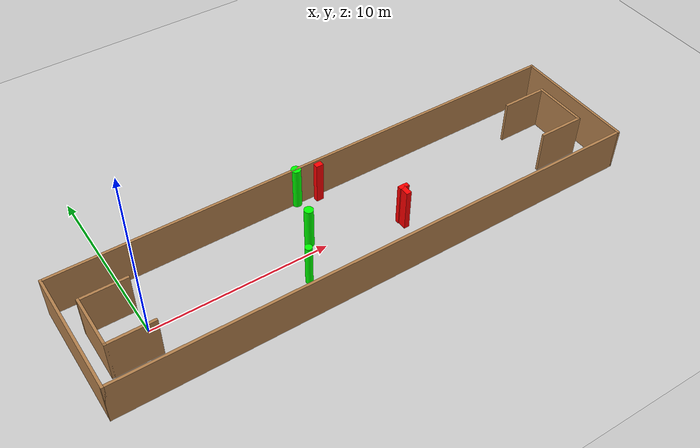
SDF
<sdf version="1.7">
 <world name="default">
  <light name="sun" type="directional">
   <pose>0 0 10 0 -0 0</pose>
   <diffuse>0.8 0.8 0.8 1</diffuse>
   <specular>0.2 0.2 0.2 1</specular>
   <attenuation>
    <range>1000</range>
    <constant>0.9</constant>
    <linear>0.01</linear>
    <quadratic>0.001</quadratic>
   </attenuation>
   <direction>-0.5 0.1 -0.9</direction>
   <spot><inner_angle>0</inner_angle><outer_angle>0</outer_angle><falloff>0</falloff></spot>
  </light>
  <model name="ground_plane">
   <static>1</static>
   <link name="link">
    <collision name="collision">
     <geometry><plane><normal>0 0 1</normal><size>100 100</size></plane></geometry>
     <surface>
      <contact><collide_bitmask>65535</collide_bitmask></contact>
      <friction><ode><mu>100</mu><mu2>50</mu2></ode></friction>
     </surface>
    </collision>
    <visual name="visual">
     <cast_shadows>0</cast_shadows>
     <geometry><plane><normal>0 0 1</normal><size>100 100</size></plane></geometry>
     <material>
      <script><uri>file://media/materials/scripts/gazebo.material</uri><name>Gazebo/Grey</name></script>
     </material>
    </visual>
   </link>
  </model>
  <gravity>0 0 -9.8</gravity>
  <magnetic_field>6e-06 2.3e-05 -4.2e-05</magnetic_field>
  <atmosphere type="adiabatic"/>
  <physics type="ode">
   <max_step_size>0.001</max_step_size>
   <real_time_factor>1</real_time_factor>
   <real_time_update_rate>1000</real_time_update_rate>
  </physics>
  <scene><ambient>0.4 0.4 0.4 1</ambient><background>0.7 0.7 0.7 1</background><shadows>1</shadows></scene>
  <spherical_coordinates>
   <surface_model>EARTH_WGS84</surface_model>
   <latitude_deg>0</latitude_deg>
   <longitude_deg>0</longitude_deg>
   <elevation>0</elevation>
   <heading_deg>0</heading_deg>
  </spherical_coordinates>
  <model name="my_base_walls">
   <link name="Wall_0">
    <collision name="Wall_0_Collision">
     <geometry><box><size>7.15 0.15 2.5</size></box></geometry>
     <pose>0 0 1.25 0 -0 0</pose>
    </collision>
    <visual name="Wall_0_Visual">
     <pose>0 0 1.25 0 -0 0</pose>
     <geometry><box><size>7.15 0.15 2.5</size></box></geometry>
     <material>
      <script><uri>file://media/materials/scripts/gazebo.material</uri><name>Gazebo/Wood</name></script>
      <ambient>1 1 1 1</ambient>
     </material>
     <meta><layer>0</layer></meta>
    </visual>
    <pose>-15 0 0 0 -0 1.5708</pose>
   </link>
   <link name="Wall_10">
    <collision name="Wall_10_Collision">
     <geometry><box><size>2.65 0.15 2.5</size></box></geometry>
     <pose>0 0 1.25 0 -0 0</pose>
    </collision>
    <visual name="Wall_10_Visual">
     <pose>0 0 1.25 0 -0 0</pose>
     <geometry><box><size>2.65 0.15 2.5</size></box></geometry>
     <material>
      <script><uri>file://media/materials/scripts/gazebo.material</uri><name>Gazebo/Wood</name></script>
      <ambient>1 1 1 1</ambient>
     </material>
     <meta><layer>0</layer></meta>
    </visual>
    <pose>-12.75 -1.5 0 0 -0 0</pose>
   </link>
   <link name="Wall_12">
    <collision name="Wall_12_Collision">
     <geometry><box><size>2.65 0.15 2.5</size></box></geometry>
     <pose>0 0 1.25 0 -0 0</pose>
    </collision>
    <visual name="Wall_12_Visual">
     <pose>0 0 1.25 0 -0 0</pose>
     <geometry><box><size>2.65 0.15 2.5</size></box></geometry>
     <material>
      <script><uri>file://media/materials/scripts/gazebo.material</uri><name>Gazebo/Wood</name></script>
      <ambient>1 1 1 1</ambient>
     </material>
     <meta><layer>0</layer></meta>
    </visual>
    <pose>-12.75 1.5 0 0 -0 0</pose>
   </link>
   <link name="Wall_14">
    <collision name="Wall_14_Collision">
     <geometry><box><size>3.15 0.15 2.5</size></box></geometry>
     <pose>0 0 1.25 0 -0 0</pose>
    </collision>
    <visual name="Wall_14_Visual">
     <pose>0 0 1.25 0 -0 0</pose>
     <geometry><box><size>3.15 0.15 2.5</size></box></geometry>
     <material>
      <script><uri>file://media/materials/scripts/gazebo.material</uri><name>Gazebo/Wood</name></script>
      <ambient>1 1 1 1</ambient>
     </material>
     <meta><layer>0</layer></meta>
    </visual>
    <pose>14 0 0 0 -0 -1.5708</pose>
   </link>
   <link name="Wall_15">
    <collision name="Wall_15_Collision">
     <geometry><box><size>2.65 0.15 2.5</size></box></geometry>
     <pose>0 0 1.25 0 -0 0</pose>
    </collision>
    <visual name="Wall_15_Visual">
     <pose>0 0 1.25 0 -0 0</pose>
     <geometry><box><size>2.65 0.15 2.5</size></box></geometry>
     <material>
      <script><uri>file://media/materials/scripts/gazebo.material</uri><name>Gazebo/Wood</name></script>
      <ambient>1 1 1 1</ambient>
     </material>
     <meta><layer>0</layer></meta>
    </visual>
    <pose>12.75 -1.5 0 0 -0 3.14159</pose>
   </link>
   <link name="Wall_17">
    <collision name="Wall_17_Collision">
     <geometry><box><size>2.65 0.15 2.5</size></box></geometry>
     <pose>0 0 1.25 0 -0 0</pose>
    </collision>
    <visual name="Wall_17_Visual">
     <pose>0 0 1.25 0 -0 0</pose>
     <geometry><box><size>2.65 0.15 2.5</size></box></geometry>
     <material>
      <script><uri>file://media/materials/scripts/gazebo.material</uri><name>Gazebo/Wood</name></script>
      <ambient>1 1 1 1</ambient>
     </material>
     <meta><layer>0</layer></meta>
    </visual>
    <pose>12.75 1.5 0 0 -0 3.14159</pose>
   </link>
   <link name="Wall_2">
    <collision name="Wall_2_Collision">
     <geometry><box><size>30.15 0.15 2.5</size></box></geometry>
     <pose>0 0 1.25 0 -0 0</pose>
    </collision>
    <visual name="Wall_2_Visual">
     <pose>0 0 1.25 0 -0 0</pose>
     <geometry><box><size>30.15 0.15 2.5</size></box></geometry>
     <material>
      <script><uri>file://media/materials/scripts/gazebo.material</uri><name>Gazebo/Wood</name></script>
      <ambient>1 1 1 1</ambient>
     </material>
     <meta><layer>0</layer></meta>
    </visual>
    <pose>-0 -3.5 0 0 -0 0</pose>
   </link>
   <link name="Wall_4">
    <collision name="Wall_4_Collision">
     <geometry><box><size>30.15 0.15 2.5</size></box></geometry>
     <pose>0 0 1.25 0 -0 0</pose>
    </collision>
    <visual name="Wall_4_Visual">
     <pose>0 0 1.25 0 -0 0</pose>
     <geometry><box><size>30.15 0.15 2.5</size></box></geometry>
     <material>
      <script><uri>file://media/materials/scripts/gazebo.material</uri><name>Gazebo/Wood</name></script>
      <ambient>1 1 1 1</ambient>
     </material>
     <meta><layer>0</layer></meta>
    </visual>
    <pose>-0 3.5 0 0 -0 0</pose>
   </link>
   <link name="Wall_6">
    <collision name="Wall_6_Collision">
     <geometry><box><size>7.15 0.15 2.5</size></box></geometry>
     <pose>0 0 1.25 0 -0 0</pose>
    </collision>
    <visual name="Wall_6_Visual">
     <pose>0 0 1.25 0 -0 0</pose>
     <geometry><box><size>7.15 0.15 2.5</size></box></geometry>
     <material>
      <script><uri>file://media/materials/scripts/gazebo.material</uri><name>Gazebo/Wood</name></script>
      <ambient>1 1 1 1</ambient>
     </material>
     <meta><layer>0</layer></meta>
    </visual>
    <pose>15 0 0 0 -0 -1.5708</pose>
   </link>
   <link name="Wall_9">
    <collision name="Wall_9_Collision">
     <geometry><box><size>3.15 0.15 2.5</size></box></geometry>
     <pose>0 0 1.25 0 -0 0</pose>
    </collision>
    <visual name="Wall_9_Visual">
     <pose>0 0 1.25 0 -0 0</pose>
     <geometry><box><size>3.15 0.15 2.5</size></box></geometry>
     <material>
      <script><uri>file://media/materials/scripts/gazebo.material</uri><name>Gazebo/Wood</name></script>
      <ambient>1 1 1 1</ambient>
     </material>
     <meta><layer>0</layer></meta>
    </visual>
    <pose>-14 0 0 0 -0 -1.5708</pose>
   </link>
   <static>1</static>
   <pose>11.5 0 0 0 -0 0</pose>
  </model>
  <model name="cylinder1">
   <static>1</static>
   <link name="link">
    <inertial>
     <mass>1</mass>
     <inertia><ixx>0.5</ixx><ixy>0</ixy><ixz>0</ixz><iyy>0.5</iyy><iyz>0</iyz><izz>1</izz></inertia>
    </inertial>
    <collision name="collision">
     <geometry><cylinder><radius>0.2712924031618617</radius><length>2.5</length></cylinder></geometry>
    </collision>
    <visual name="visual">
     <geometry><cylinder><radius>0.2712924031618617</radius><length>2.5</length></cylinder></geometry>
     <material>
      <ambient>0 1 0 1</ambient>
      <diffuse>0 1 0 1</diffuse>
      <specular>0.1 0.1 0.1 1</specular>
      <emissive>0 0 0 0</emissive>
     </material>
    </visual>
   </link>
   <pose>10.389117493975993 3.46737330692838 1.25 0 0 0</pose>
  </model>
  <model name="cylinder2">
   <static>1</static>
   <link name="link">
    <inertial>
     <mass>1</mass>
     <inertia><ixx>0.5</ixx><ixy>0</ixy><ixz>0</ixz><iyy>0.5</iyy><iyz>0</iyz><izz>1</izz></inertia>
    </inertial>
    <collision name="collision">
     <geometry><cylinder><radius>0.19841327802043213</radius><length>2.5</length></cylinder></geometry>
    </collision>
    <visual name="visual">
     <geometry><cylinder><radius>0.19841327802043213</radius><length>2.5</length></cylinder></geometry>
     <material>
      <ambient>0 1 0 1</ambient>
      <diffuse>0 1 0 1</diffuse>
      <specular>0.1 0.1 0.1 1</specular>
      <emissive>0 0 0 0</emissive>
     </material>
    </visual>
   </link>
   <pose>8.042156430054355 -1.5126676912856805 1.25 0 0 0</pose>
  </model>
  <model name="cylinder3">
   <static>1</static>
   <link name="link">
    <inertial>
     <mass>1</mass>
     <inertia><ixx>0.5</ixx><ixy>0</ixy><ixz>0</ixz><iyy>0.5</iyy><iyz>0</iyz><izz>1</izz></inertia>
    </inertial>
    <collision name="collision">
     <geometry><cylinder><radius>0.25531453020468203</radius><length>2.5</length></cylinder></geometry>
    </collision>
    <visual name="visual">
     <geometry><cylinder><radius>0.25531453020468203</radius><length>2.5</length></cylinder></geometry>
     <material>
      <ambient>0 1 0 1</ambient>
      <diffuse>0 1 0 1</diffuse>
      <specular>0.1 0.1 0.1 1</specular>
      <emissive>0 0 0 0</emissive>
     </material>
    </visual>
   </link>
   <pose>9.380338305776968 0.6144370278691831 1.25 0 0 0</pose>
  </model>
  <model name="box1">
   <static>1</static>
   <link name="link">
    <inertial>
     <mass>1</mass>
     <inertia><ixx>0.083</ixx><ixy>0</ixy><ixz>0</ixz><iyy>0.083</iyy><iyz>0</iyz><izz>0.083</izz></inertia>
    </inertial>
    <collision name="collision">
     <geometry><box><size>0.4262531521423888 0.3026279724845772 2.5</size></box></geometry>
    </collision>
    <visual name="visual">
     <geometry><box><size>0.4262531521423888 0.3026279724845772 2.5</size></box></geometry>
     <material>
      <ambient>1 0 0 1</ambient>
      <diffuse>1 0 0 1</diffuse>
      <specular>0.1 0.1 0.1 1</specular>
      <emissive>0 0 0 0</emissive>
     </material>
    </visual>
    <sensor name="my_contact" type="contact">
     <contact><collision>box_collision</collision><topic>__default_topic__</topic></contact>
    </sensor>
   </link>
   <pose>11.579744961176232 3.163758507243485 1.25 0 0 0</pose>
  </model>
  <model name="box2">
   <static>1</static>
   <link name="link">
    <inertial>
     <mass>1</mass>
     <inertia><ixx>0.083</ixx><ixy>0</ixy><ixz>0</ixz><iyy>0.083</iyy><iyz>0</iyz><izz>0.083</izz></inertia>
    </inertial>
    <collision name="collision">
     <geometry><box><size>0.5740178221196197 0.2437528109650834 2.5</size></box></geometry>
    </collision>
    <visual name="visual">
     <geometry><box><size>0.5740178221196197 0.2437528109650834 2.5</size></box></geometry>
     <material>
      <ambient>1 0 0 1</ambient>
      <diffuse>1 0 0 1</diffuse>
      <specular>0.1 0.1 0.1 1</specular>
      <emissive>0 0 0 0</emissive>
     </material>
    </visual>
    <sensor name="my_contact" type="contact">
     <contact><collision>box_collision</collision><topic>__default_topic__</topic></contact>
    </sensor>
   </link>
   <pose>14.339265895555414 -0.5786461100367357 1.25 0 0 0</pose>
  </model>
  <model name="box3">
   <static>1</static>
   <link name="link">
    <inertial>
     <mass>1</mass>
     <inertia><ixx>0.083</ixx><ixy>0</ixy><ixz>0</ixz><iyy>0.083</iyy><iyz>0</iyz><izz>0.083</izz></inertia>
    </inertial>
    <collision name="collision">
     <geometry><box><size>0.304624535523524 0.5714473344657016 2.5</size></box></geometry>
    </collision>
    <visual name="visual">
     <geometry><box><size>0.304624535523524 0.5714473344657016 2.5</size></box></geometry>
     <material>
      <ambient>1 0 0 1</ambient>
      <diffuse>1 0 0 1</diffuse>
      <specular>0.1 0.1 0.1 1</specular>
      <emissive>0 0 0 0</emissive>
     </material>
    </visual>
    <sensor name="my_contact" type="contact">
     <contact><collision>box_collision</collision><topic>__default_topic__</topic></contact>
    </sensor>
   </link>
   <pose>14.25842667337796 -0.8874944292218867 1.25 0 0 0</pose>
  </model>
 </world>
</sdf>
